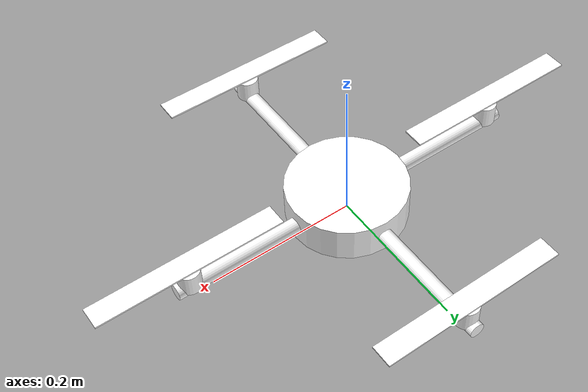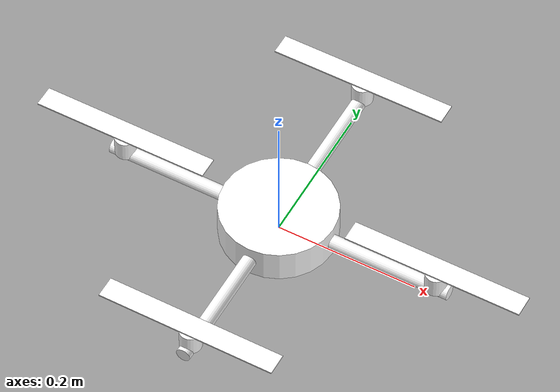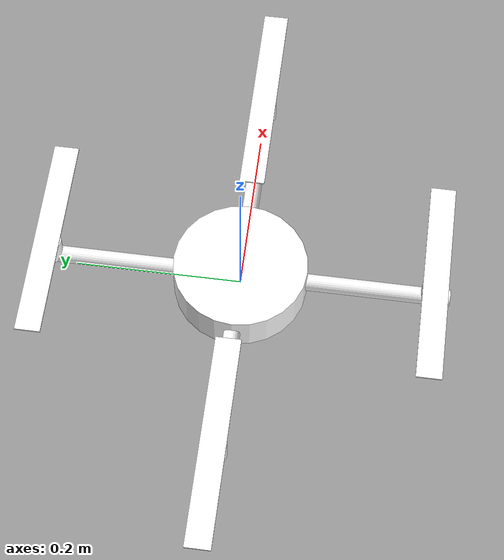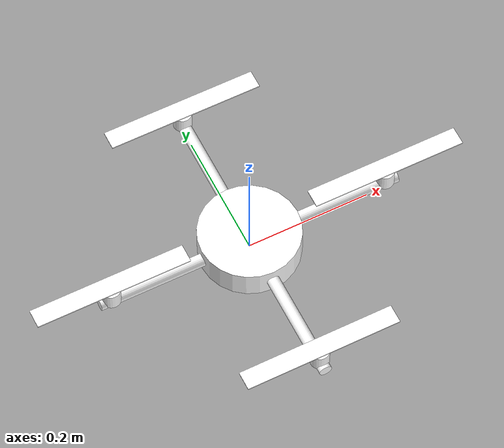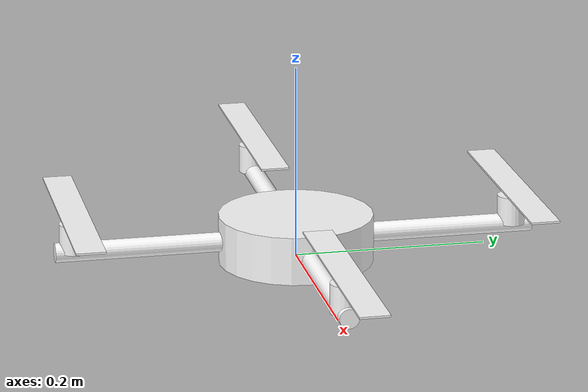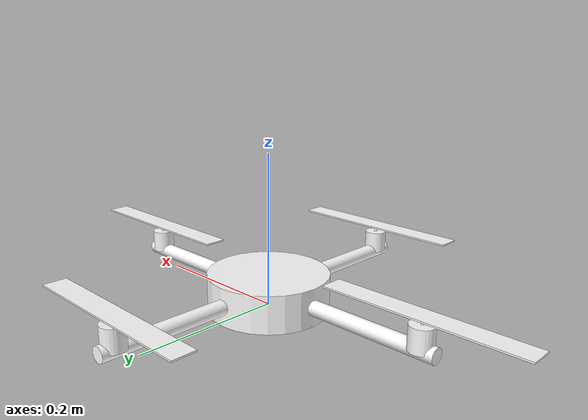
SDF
<sdf version="1.4">
 <world name="outdoor">
  <scene>
   <ambient>0.2 0.2 0.2 1.0</ambient>
   <grid>false</grid>
   <sky><clouds><speed>4</speed></clouds></sky>
  </scene>
  <physics type="ode">
   <ode>
    <solver><type>quick</type><iters>1000</iters><sor>1.3</sor></solver>
    <constraints>
     <cfm>0</cfm>
     <erp>0.2</erp>
     <contact_max_correcting_vel>100</contact_max_correcting_vel>
     <contact_surface_layer>0.001</contact_surface_layer>
    </constraints>
   </ode>
   <max_step_size>0.01</max_step_size>
   <real_time_factor>1</real_time_factor>
   <real_time_update_rate>100</real_time_update_rate>
   <gravity>0 0 -9.8</gravity>
  </physics>
  <light type="directional" name="sun">
   <cast_shadows>false</cast_shadows>
   <pose>0 0 100 0 0 0</pose>
   <diffuse>0.8 0.8 0.8 1</diffuse>
   <specular>0.9 0.9 0.9 1</specular>
   <attenuation>
    <range>1000</range>
    <constant>0.9</constant>
    <linear>0.01</linear>
    <quadratic>0.001</quadratic>
   </attenuation>
   <direction>0.2 0.2 -0.9</direction>
  </light>
  <light type="point" name="light_bulb">
   <cast_shadows>false</cast_shadows>
   <pose>-14 0 5 0 0 0</pose>
   <diffuse>0.3 0.3 0.3 1</diffuse>
   <specular>0.0 0.0 0.0 1</specular>
   <attenuation>
    <range>80</range>
    <constant>0.9</constant>
    <linear>0.01</linear>
    <quadratic>0.001</quadratic>
   </attenuation>
  </light>
  <model name="road_boxes">
   <static>true</static>
   <link name="link">
    <collision name="collision_1">
     <pose>51 0 0 0 0 0</pose>
     <geometry><box><size>102 7.34 0.02</size></box></geometry>
     <surface><friction><ode><mu>0.8</mu><mu2>0.8</mu2></ode></friction></surface>
    </collision>
    <collision name="collision_2">
     <pose>125 25 0 0 0 0.78539</pose>
     <geometry><box><size>72 7.34 0.02</size></box></geometry>
     <surface><friction><ode><mu>0.8</mu><mu2>0.8</mu2></ode></friction></surface>
    </collision>
    <collision name="collision_3">
     <pose>150 75 0 0 0 0</pose>
     <geometry><box><size>7.34 53 0.02</size></box></geometry>
     <surface><friction><ode><mu>0.8</mu><mu2>0.8</mu2></ode></friction></surface>
    </collision>
    <collision name="collision_4">
     <pose>173.5 100 0 0 0 0</pose>
     <geometry><box><size>54.5 7.34 0.02</size></box></geometry>
     <surface><friction><ode><mu>0.8</mu><mu2>0.8</mu2></ode></friction></surface>
    </collision>
    <collision name="collision_5">
     <pose>198 106 0 0 0 0</pose>
     <geometry><box><size>6 5 0.02</size></box></geometry>
     <surface><friction><ode><mu>0.8</mu><mu2>0.8</mu2></ode></friction></surface>
    </collision>
   </link>
  </model>
  <model name="quad">
   <link name="base">
    <inertial>
     <mass>1</mass>
     <inertia><ixx>0.015</ixx><ixy>0</ixy><ixz>0</ixz><iyy>0.015</iyy><iyz>0</iyz><izz>0.007</izz></inertia>
     <pose>0 0 0.1 0 -0 0</pose>
    </inertial>
    <collision name="base">
     <geometry><cylinder><radius>0.1</radius><length>0.05</length></cylinder></geometry>
    </collision>
    <collision name="land_1">
     <pose>0.1 0 0 0 -0 0</pose>
     <geometry><sphere><radius>0.03</radius></sphere></geometry>
    </collision>
    <collision name="land_2">
     <pose>-0.05 0.086 0 0 -0 0</pose>
     <geometry><sphere><radius>0.03</radius></sphere></geometry>
    </collision>
    <collision name="land_3">
     <pose>-0.05 -0.086 0 0 -0 0</pose>
     <geometry><sphere><radius>0.03</radius></sphere></geometry>
    </collision>
    <visual name="body">
     <geometry><cylinder><radius>0.08</radius><length>0.05</length></cylinder></geometry>
     <material><ambient>1 0.6 0.4 1</ambient><diffuse>1 1 1 1</diffuse></material>
    </visual>
    <visual name="arm-1">
     <pose>0.125 0 0 3.14159 1.57079 3.14159</pose>
     <geometry><cylinder><radius>0.01</radius><length>0.25</length></cylinder></geometry>
     <material><ambient>1 0.4 0.4 1</ambient><diffuse>1 1 1 1</diffuse></material>
    </visual>
    <visual name="arm-2">
     <pose>0 0.125 0 3.14159 1.57079 -1.57079</pose>
     <geometry><cylinder><radius>0.01</radius><length>0.25</length></cylinder></geometry>
     <material><ambient>0.6 0.6 0.6 1</ambient><diffuse>1 1 1 1</diffuse></material>
    </visual>
    <visual name="arm-3">
     <pose>-0.125 0 0 3.14159 1.57079 3.14159</pose>
     <geometry><cylinder><radius>0.01</radius><length>0.25</length></cylinder></geometry>
     <material><ambient>0.6 0.6 0.6 1</ambient><diffuse>1 1 1 1</diffuse></material>
    </visual>
    <visual name="arm-4">
     <pose>0 -0.125 0 3.14159 1.57079 -1.57079</pose>
     <geometry><cylinder><radius>0.01</radius><length>0.25</length></cylinder></geometry>
     <material><ambient>0.6 0.6 0.6 1</ambient><diffuse>1 1 1 1</diffuse></material>
    </visual>
   </link>
   <frame name="rotor-1::__model__" attached_to="rotor-1::propeller">
    <pose relative_to="__model__">0.23 0 0 0 -0 0</pose>
   </frame>
   <link name="rotor-1::propeller">
    <inertial>
     <mass>0.07</mass>
     <inertia><ixx>4e-05</ixx><ixy>0</ixy><ixz>0</ixz><iyy>4e-05</iyy><iyz>0</iyz><izz>8e-05</izz></inertia>
    </inertial>
    <collision name="collision">
     <pose>0 0 0.04 0 -0 0</pose>
     <geometry><cylinder><radius>0.127</radius><length>0.002</length></cylinder></geometry>
    </collision>
    <visual name="motor">
     <pose>0 0 0.015 0 -0 0</pose>
     <geometry><cylinder><radius>0.015</radius><length>0.03</length></cylinder></geometry>
     <material><ambient>0.1 0.1 0.1 1</ambient><diffuse>1 1 1 1</diffuse></material>
    </visual>
    <visual name="axle">
     <pose>0 0 0.035 0 -0 0</pose>
     <geometry><cylinder><radius>0.002</radius><length>0.01</length></cylinder></geometry>
     <material><ambient>0.1 0.1 0.1 1</ambient><diffuse>1 1 1 1</diffuse></material>
    </visual>
    <visual name="blade">
     <pose>0 0 0.04 0 -0 0</pose>
     <geometry><box><size>0.25 0.03 0.002</size></box></geometry>
     <material><ambient>0.1 0.1 0.1 1</ambient><diffuse>1 1 1 1</diffuse></material>
    </visual>
    <pose relative_to="rotor-1::__model__">0 0 0 0 -0 0</pose>
   </link>
   <joint name="rotor-1" type="revolute">
    <parent>base</parent>
    <child>rotor-1::propeller</child>
    <axis>
     <xyz>0 0 1</xyz>
     <limit><lower>-1e+16</lower><upper>1e+16</upper></limit>
     <dynamics><spring_reference>0</spring_reference><spring_stiffness>0</spring_stiffness></dynamics>
    </axis>
   </joint>
   <frame name="rotor-2::__model__" attached_to="rotor-2::propeller">
    <pose relative_to="__model__">0 0.23 0 0 -0 0</pose>
   </frame>
   <link name="rotor-2::propeller">
    <inertial>
     <mass>0.07</mass>
     <inertia><ixx>4e-05</ixx><ixy>0</ixy><ixz>0</ixz><iyy>4e-05</iyy><iyz>0</iyz><izz>8e-05</izz></inertia>
    </inertial>
    <collision name="collision">
     <pose>0 0 0.04 0 -0 0</pose>
     <geometry><cylinder><radius>0.127</radius><length>0.002</length></cylinder></geometry>
    </collision>
    <visual name="motor">
     <pose>0 0 0.015 0 -0 0</pose>
     <geometry><cylinder><radius>0.015</radius><length>0.03</length></cylinder></geometry>
     <material><ambient>0.1 0.1 0.1 1</ambient><diffuse>1 1 1 1</diffuse></material>
    </visual>
    <visual name="axle">
     <pose>0 0 0.035 0 -0 0</pose>
     <geometry><cylinder><radius>0.002</radius><length>0.01</length></cylinder></geometry>
     <material><ambient>0.1 0.1 0.1 1</ambient><diffuse>1 1 1 1</diffuse></material>
    </visual>
    <visual name="blade">
     <pose>0 0 0.04 0 -0 0</pose>
     <geometry><box><size>0.25 0.03 0.002</size></box></geometry>
     <material><ambient>0.1 0.1 0.1 1</ambient><diffuse>1 1 1 1</diffuse></material>
    </visual>
    <pose relative_to="rotor-2::__model__">0 0 0 0 -0 0</pose>
   </link>
   <joint name="rotor-2" type="revolute">
    <parent>base</parent>
    <child>rotor-2::propeller</child>
    <axis>
     <xyz>0 0 1</xyz>
     <limit><lower>-1e+16</lower><upper>1e+16</upper></limit>
     <dynamics><spring_reference>0</spring_reference><spring_stiffness>0</spring_stiffness></dynamics>
    </axis>
   </joint>
   <frame name="rotor-3::__model__" attached_to="rotor-3::propeller">
    <pose relative_to="__model__">-0.23 0 0 0 -0 0</pose>
   </frame>
   <link name="rotor-3::propeller">
    <inertial>
     <mass>0.07</mass>
     <inertia><ixx>4e-05</ixx><ixy>0</ixy><ixz>0</ixz><iyy>4e-05</iyy><iyz>0</iyz><izz>8e-05</izz></inertia>
    </inertial>
    <collision name="collision">
     <pose>0 0 0.04 0 -0 0</pose>
     <geometry><cylinder><radius>0.127</radius><length>0.002</length></cylinder></geometry>
    </collision>
    <visual name="motor">
     <pose>0 0 0.015 0 -0 0</pose>
     <geometry><cylinder><radius>0.015</radius><length>0.03</length></cylinder></geometry>
     <material><ambient>0.1 0.1 0.1 1</ambient><diffuse>1 1 1 1</diffuse></material>
    </visual>
    <visual name="axle">
     <pose>0 0 0.035 0 -0 0</pose>
     <geometry><cylinder><radius>0.002</radius><length>0.01</length></cylinder></geometry>
     <material><ambient>0.1 0.1 0.1 1</ambient><diffuse>1 1 1 1</diffuse></material>
    </visual>
    <visual name="blade">
     <pose>0 0 0.04 0 -0 0</pose>
     <geometry><box><size>0.25 0.03 0.002</size></box></geometry>
     <material><ambient>0.1 0.1 0.1 1</ambient><diffuse>1 1 1 1</diffuse></material>
    </visual>
    <pose relative_to="rotor-3::__model__">0 0 0 0 -0 0</pose>
   </link>
   <joint name="rotor-3" type="revolute">
    <parent>base</parent>
    <child>rotor-3::propeller</child>
    <axis>
     <xyz>0 0 1</xyz>
     <limit><lower>-1e+16</lower><upper>1e+16</upper></limit>
     <dynamics><spring_reference>0</spring_reference><spring_stiffness>0</spring_stiffness></dynamics>
    </axis>
   </joint>
   <frame name="rotor-4::__model__" attached_to="rotor-4::propeller">
    <pose relative_to="__model__">0 -0.23 0 0 -0 0</pose>
   </frame>
   <link name="rotor-4::propeller">
    <inertial>
     <mass>0.07</mass>
     <inertia><ixx>4e-05</ixx><ixy>0</ixy><ixz>0</ixz><iyy>4e-05</iyy><iyz>0</iyz><izz>8e-05</izz></inertia>
    </inertial>
    <collision name="collision">
     <pose>0 0 0.04 0 -0 0</pose>
     <geometry><cylinder><radius>0.127</radius><length>0.002</length></cylinder></geometry>
    </collision>
    <visual name="motor">
     <pose>0 0 0.015 0 -0 0</pose>
     <geometry><cylinder><radius>0.015</radius><length>0.03</length></cylinder></geometry>
     <material><ambient>0.1 0.1 0.1 1</ambient><diffuse>1 1 1 1</diffuse></material>
    </visual>
    <visual name="axle">
     <pose>0 0 0.035 0 -0 0</pose>
     <geometry><cylinder><radius>0.002</radius><length>0.01</length></cylinder></geometry>
     <material><ambient>0.1 0.1 0.1 1</ambient><diffuse>1 1 1 1</diffuse></material>
    </visual>
    <visual name="blade">
     <pose>0 0 0.04 0 -0 0</pose>
     <geometry><box><size>0.25 0.03 0.002</size></box></geometry>
     <material><ambient>0.1 0.1 0.1 1</ambient><diffuse>1 1 1 1</diffuse></material>
    </visual>
    <pose relative_to="rotor-4::__model__">0 0 0 0 -0 0</pose>
   </link>
   <joint name="rotor-4" type="revolute">
    <parent>base</parent>
    <child>rotor-4::propeller</child>
    <axis>
     <xyz>0 0 1</xyz>
     <limit><lower>-1e+16</lower><upper>1e+16</upper></limit>
     <dynamics><spring_reference>0</spring_reference><spring_stiffness>0</spring_stiffness></dynamics>
    </axis>
   </joint>
   <link name="down_camera_link">
    <pose>0 0 0 3.14159 1.57079 3.14159</pose>
    <inertial>
     <mass>0.001</mass>
     <inertia>
      <ixx>3.2061e-05</ixx>
      <ixy>-1.169e-08</ixy>
      <ixz>-4.2601e-10</ixz>
      <iyy>3.0815e-05</iyy>
      <iyz>5.2182e-10</iyz>
      <izz>5.1652e-06</izz>
     </inertia>
    </inertial>
    <visual name="down_camera_visual">
     <geometry><cylinder><radius>0.02</radius><length>0.04</length></cylinder></geometry>
     <material><ambient>0.1 0.1 0.1 1</ambient><diffuse>1 1 1 1</diffuse></material>
    </visual>
    <sensor name="down_camera" type="camera">
     <camera>
      <horizontal_fov>1.2</horizontal_fov>
      <image><format>R8G8B8</format><width>640</width><height>480</height></image>
      <clip><near>0.05</near><far>15000</far></clip>
     </camera>
     <always_on>1</always_on>
     <update_rate>10</update_rate>
     <plugin name="camera_en_ros" filename="libgazebo_ros_camera.so">
      <cameraName>down_camera_link</cameraName>
      <imageTopicName>down_raw_image</imageTopicName>
      <cameraInfoTopicName>down_info_image</cameraInfoTopicName>
      <FrameName>downCameraImage</FrameName>
      <Cy>0</Cy>
      <Cx>0</Cx>
      <updateRate>30.0</updateRate>
     </plugin>
    </sensor>
   </link>
   <joint name="down_camera_joint" type="fixed">
    <child>down_camera_link</child>
    <parent>base</parent>
    <axis><xyz>1 0 0</xyz><limit><lower>-1e+16</lower><upper>1e+16</upper></limit></axis>
   </joint>
   <plugin name="mrsim" filename="mrsim-gazebo.so">
    <link>base</link>
    <rotors>
     <noise>0.03</noise>
     <cf>6.5e-4</cf>
     <ct>1e-5</ct>
     <rotor><joint spin="cw">rotor-1</joint></rotor>
     <rotor><joint spin="ccw">rotor-2</joint></rotor>
     <rotor><joint spin="cw">rotor-3</joint></rotor>
     <rotor><joint spin="ccw">rotor-4</joint></rotor>
    </rotors>
   </plugin>
   <pose>0 0 0.02 0 -0 0</pose>
  </model>
  <plugin name="optitrack" filename="optitrack-gazebo.so">
   <hz>1000</hz>
   <port>1509</port>
   <publish><link>quad::base</link><name>QR</name></publish>
  </plugin>
 </world>
</sdf>
